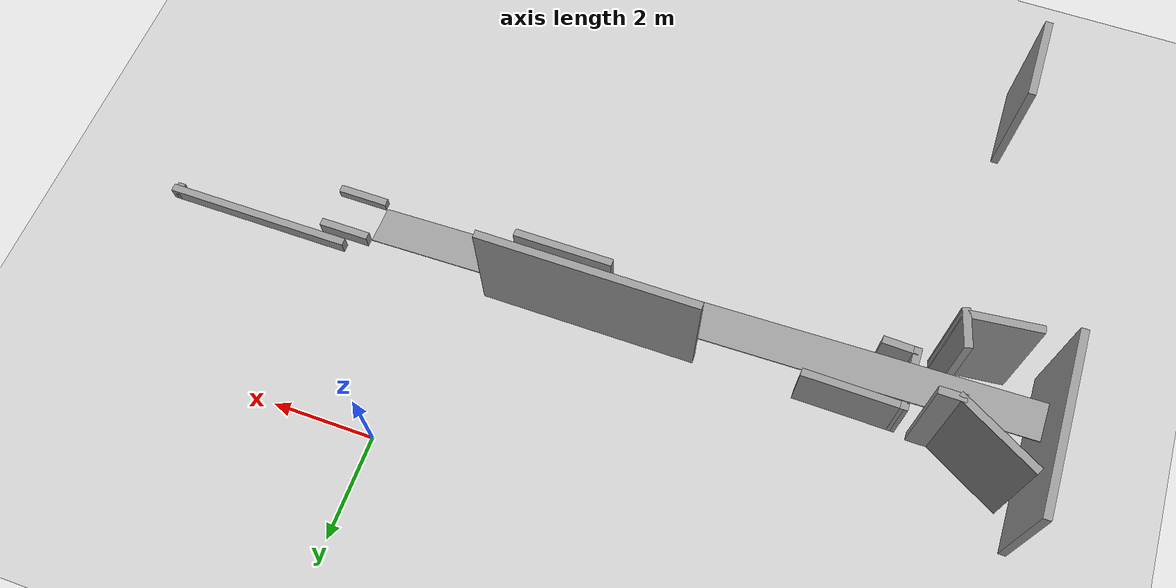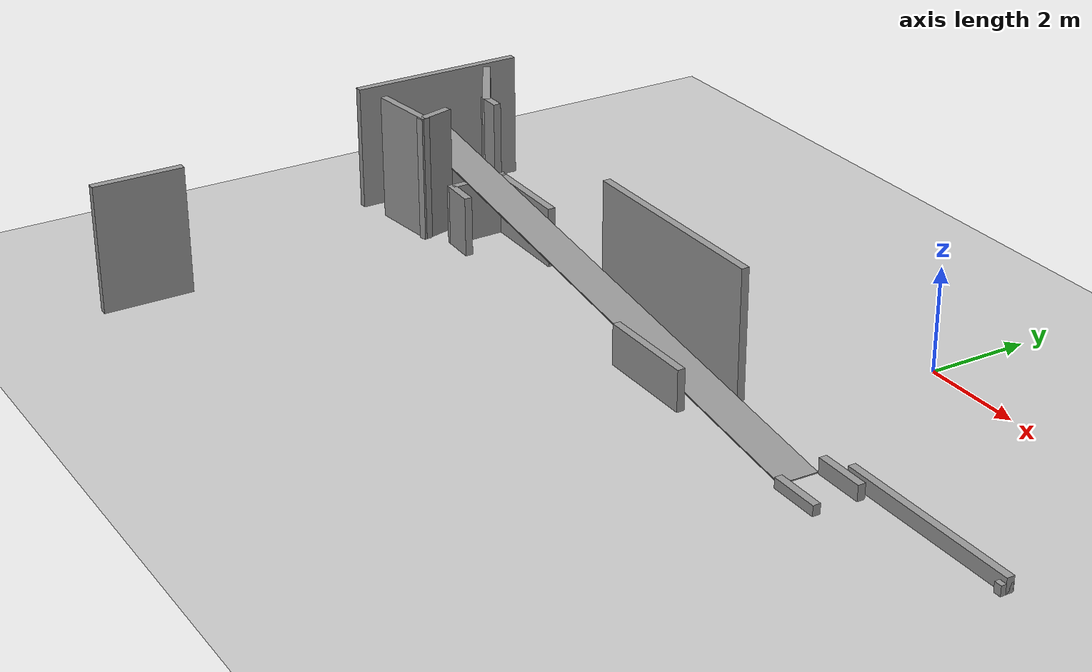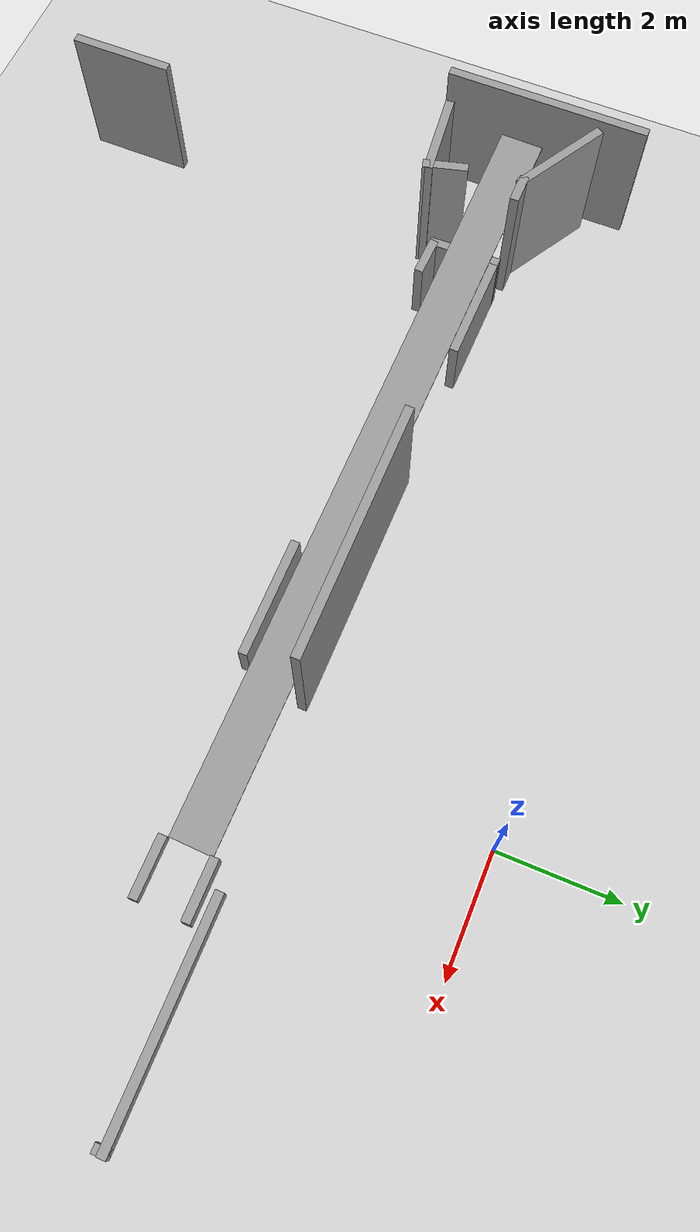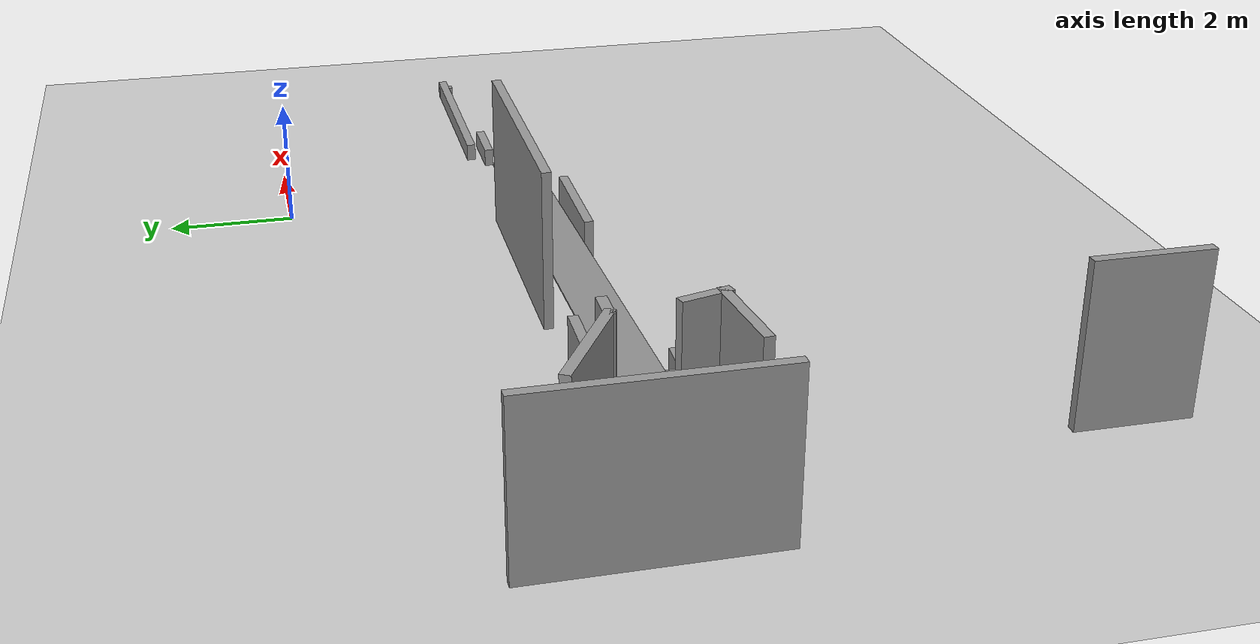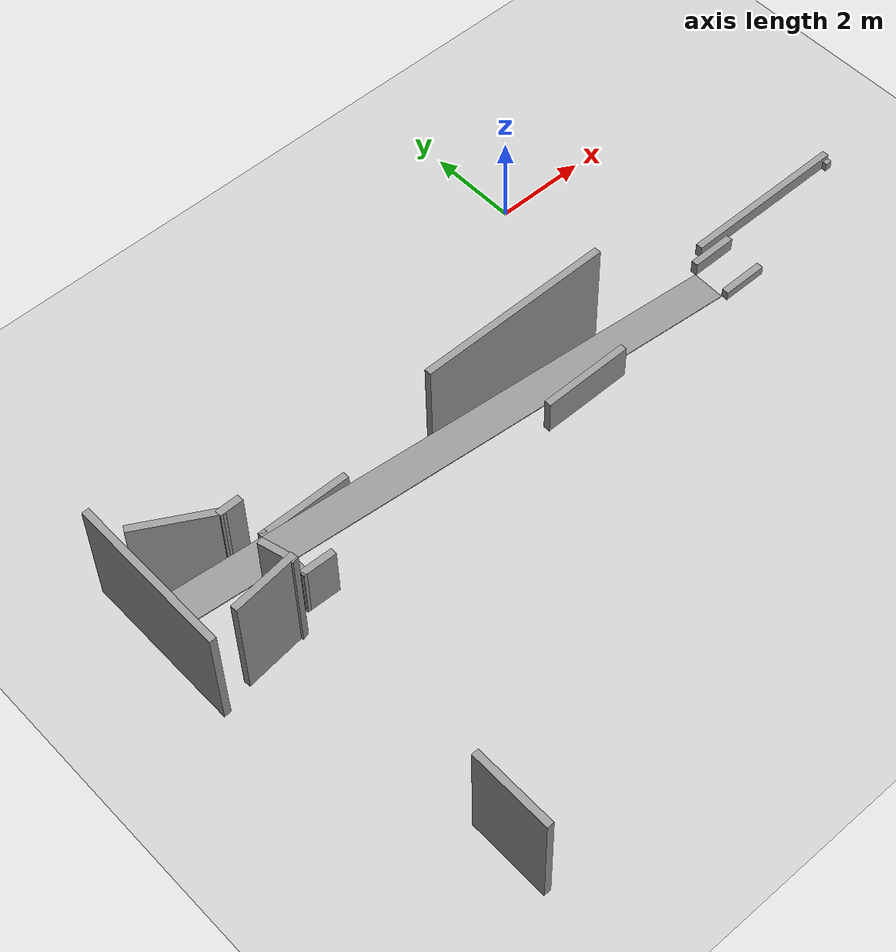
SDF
<sdf version="1.7">
 <world name="default">
  <light name="sun" type="directional">
   <pose>0 0 10 0 -0 0</pose>
   <diffuse>0.8 0.8 0.8 1</diffuse>
   <specular>0.2 0.2 0.2 1</specular>
   <attenuation>
    <range>1000</range>
    <constant>0.9</constant>
    <linear>0.01</linear>
    <quadratic>0.001</quadratic>
   </attenuation>
   <direction>-0.5 0.1 -0.9</direction>
   <spot><inner_angle>0</inner_angle><outer_angle>0</outer_angle><falloff>0</falloff></spot>
  </light>
  <model name="ground_plane">
   <static>1</static>
   <link name="link">
    <collision name="collision">
     <geometry><plane><normal>0 0 1</normal><size>100 100</size></plane></geometry>
     <surface>
      <contact><collide_bitmask>65535</collide_bitmask></contact>
      <friction><ode><mu>100</mu><mu2>50</mu2></ode></friction>
     </surface>
    </collision>
    <visual name="visual">
     <cast_shadows>0</cast_shadows>
     <geometry><plane><normal>0 0 1</normal><size>100 100</size></plane></geometry>
     <material>
      <script><uri>file://media/materials/scripts/gazebo.material</uri><name>Gazebo/Grey</name></script>
     </material>
    </visual>
   </link>
  </model>
  <gravity>0 0 -9.8</gravity>
  <magnetic_field>6e-06 2.3e-05 -4.2e-05</magnetic_field>
  <atmosphere type="adiabatic"/>
  <physics type="ode">
   <max_step_size>0.001</max_step_size>
   <real_time_factor>1</real_time_factor>
   <real_time_update_rate>1000</real_time_update_rate>
  </physics>
  <scene><ambient>0.4 0.4 0.4 1</ambient><background>0.7 0.7 0.7 1</background><shadows>1</shadows></scene>
  <spherical_coordinates>
   <surface_model>EARTH_WGS84</surface_model>
   <latitude_deg>0</latitude_deg>
   <longitude_deg>0</longitude_deg>
   <elevation>0</elevation>
   <heading_deg>0</heading_deg>
  </spherical_coordinates>
  <model name="Untitled">
   <pose>-1.6154 -2.30429 -0.327829 0 -0 0</pose>
   <link name="Wall_3">
    <collision name="Wall_3_Collision">
     <geometry><box><size>1.98023 0.15 1.5</size></box></geometry>
     <pose>0 0 0.75 0 -0 0</pose>
    </collision>
    <visual name="Wall_3_Visual">
     <pose>0 0 0.75 0 -0 0</pose>
     <geometry><box><size>1.98023 0.15 1.5</size></box></geometry>
     <material>
      <script><uri>file://media/materials/scripts/gazebo.material</uri><name>Gazebo/Grey</name></script>
      <ambient>1 1 1 1</ambient>
     </material>
     <meta><layer>0</layer></meta>
    </visual>
    <pose>-6.47232 -1.09923 0 0 -0 3.13066</pose>
   </link>
   <link name="Wall_4">
    <collision name="Wall_4_Collision">
     <geometry><box><size>1.25 0.15 1.5</size></box></geometry>
     <pose>0 0 0.75 0 -0 0</pose>
    </collision>
    <visual name="Wall_4_Visual">
     <pose>0 0 0.75 0 -0 0</pose>
     <geometry><box><size>1.25 0.15 1.5</size></box></geometry>
     <material>
      <script><uri>file://media/materials/scripts/gazebo.material</uri><name>Gazebo/Grey</name></script>
      <ambient>1 1 1 1</ambient>
     </material>
     <meta><layer>0</layer></meta>
    </visual>
    <pose>-7.37732 -1.63923 0 0 -0 -1.55262</pose>
   </link>
   <link name="Wall_5">
    <collision name="Wall_5_Collision">
     <geometry><box><size>0.730466 0.15 1.5</size></box></geometry>
     <pose>0 0 0.75 0 -0 0</pose>
    </collision>
    <visual name="Wall_5_Visual">
     <pose>0 0 0.75 0 -0 0</pose>
     <geometry><box><size>0.730466 0.15 1.5</size></box></geometry>
     <material>
      <script><uri>file://media/materials/scripts/gazebo.material</uri><name>Gazebo/Grey</name></script>
      <ambient>1 1 1 1</ambient>
     </material>
     <meta><layer>0</layer></meta>
    </visual>
    <pose>-7.07733 -2.19923 0 0 -0 -0.034469</pose>
   </link>
   <link name="Wall_8">
    <collision name="Wall_8_Collision">
     <geometry><box><size>3.75 0.15 0.6</size></box></geometry>
     <pose>0 0 0.3 0 -0 0</pose>
    </collision>
    <visual name="Wall_8_Visual">
     <pose>0 0 0.3 0 -0 0</pose>
     <geometry><box><size>3.75 0.15 0.6</size></box></geometry>
     <material>
      <script><uri>file://media/materials/scripts/gazebo.material</uri><name>Gazebo/Grey</name></script>
      <ambient>1 1 1 1</ambient>
     </material>
     <meta><layer>0</layer></meta>
    </visual>
    <pose>5.58868 -1.12923 0 0 -0 0</pose>
   </link>
   <link name="Wall_9">
    <collision name="Wall_9_Collision">
     <geometry><box><size>0.25 0.15 0.5</size></box></geometry>
     <pose>0 0 0.25 0 -0 0</pose>
    </collision>
    <visual name="Wall_9_Visual">
     <pose>0 0 0.25 0 -0 0</pose>
     <geometry><box><size>0.25 0.15 0.5</size></box></geometry>
     <material>
      <script><uri>file://media/materials/scripts/gazebo.material</uri><name>Gazebo/Grey</name></script>
      <ambient>1 1 1 1</ambient>
     </material>
     <meta><layer>0</layer></meta>
    </visual>
    <pose>7.38868 -1.17923 0 0 -0 -1.5708</pose>
   </link>
   <static>1</static>
  </model>
  <model name="Untitled_0">
   <pose>-5.74938 -5.70004 0 0 -0 0</pose>
   <link name="Wall_11">
    <collision name="Wall_11_Collision">
     <geometry><box><size>1.75 0.15 2.5</size></box></geometry>
     <pose>0 0 1.25 0 -0 0</pose>
    </collision>
    <visual name="Wall_11_Visual">
     <pose>0 0 1.25 0 -0 0</pose>
     <geometry><box><size>1.75 0.15 2.5</size></box></geometry>
     <material>
      <script><uri>file://media/materials/scripts/gazebo.material</uri><name>Gazebo/Grey</name></script>
      <ambient>1 1 1 1</ambient>
     </material>
     <meta><layer>0</layer></meta>
    </visual>
    <pose>-3.90331 -4.82504 0 0 -0 1.5708</pose>
   </link>
   <link name="Wall_13">
    <collision name="Wall_13_Collision">
     <geometry><box><size>3.5 0.15 2.5</size></box></geometry>
     <pose>0 0 1.25 0 -0 0</pose>
    </collision>
    <visual name="Wall_13_Visual">
     <pose>0 0 1.25 0 -0 0</pose>
     <geometry><box><size>3.5 0.15 2.5</size></box></geometry>
     <material>
      <script><uri>file://media/materials/scripts/gazebo.material</uri><name>Gazebo/Grey</name></script>
      <ambient>1 1 1 1</ambient>
     </material>
     <meta><layer>0</layer></meta>
    </visual>
    <pose>-5.67438 2.22869 0 0 -0 1.5708</pose>
   </link>
   <link name="Wall_15">
    <collision name="Wall_15_Collision">
     <geometry><box><size>1.43736 0.15 2.5</size></box></geometry>
     <pose>0 0 1.25 0 -0 0</pose>
    </collision>
    <visual name="Wall_15_Visual">
     <pose>0 0 1.25 0 -0 0</pose>
     <geometry><box><size>1.43736 0.15 2.5</size></box></geometry>
     <material>
      <script><uri>file://media/materials/scripts/gazebo.material</uri><name>Gazebo/Grey</name></script>
      <ambient>1 1 1 1</ambient>
     </material>
     <meta><layer>0</layer></meta>
    </visual>
    <pose>-4.33098 0.799944 0 0 -0 0.109524</pose>
   </link>
   <link name="Wall_16">
    <collision name="Wall_16_Collision">
     <geometry><box><size>0.75 0.15 2.5</size></box></geometry>
     <pose>0 0 1.25 0 -0 0</pose>
    </collision>
    <visual name="Wall_16_Visual">
     <pose>0 0 1.25 0 -0 0</pose>
     <geometry><box><size>0.75 0.15 2.5</size></box></geometry>
     <material>
      <script><uri>file://media/materials/scripts/gazebo.material</uri><name>Gazebo/Grey</name></script>
      <ambient>1 1 1 1</ambient>
     </material>
     <meta><layer>0</layer></meta>
    </visual>
    <pose>-3.76881 1.1249 0 0 -0 1.8326</pose>
   </link>
   <link name="Wall_18">
    <collision name="Wall_18_Collision">
     <geometry><box><size>1.75 0.15 2.5</size></box></geometry>
     <pose>0 0 1.25 0 -0 0</pose>
    </collision>
    <visual name="Wall_18_Visual">
     <pose>0 0 1.25 0 -0 0</pose>
     <geometry><box><size>1.75 0.15 2.5</size></box></geometry>
     <material>
      <script><uri>file://media/materials/scripts/gazebo.material</uri><name>Gazebo/Grey</name></script>
      <ambient>1 1 1 1</ambient>
     </material>
     <meta><layer>0</layer></meta>
    </visual>
    <pose>-4.66495 2.7921 0 0 -0 -0.523599</pose>
   </link>
   <link name="Wall_19">
    <collision name="Wall_19_Collision">
     <geometry><box><size>0.5 0.15 2.5</size></box></geometry>
     <pose>0 0 1.25 0 -0 0</pose>
    </collision>
    <visual name="Wall_19_Visual">
     <pose>0 0 1.25 0 -0 0</pose>
     <geometry><box><size>0.5 0.15 2.5</size></box></geometry>
     <material>
      <script><uri>file://media/materials/scripts/gazebo.material</uri><name>Gazebo/Grey</name></script>
      <ambient>1 1 1 1</ambient>
     </material>
     <meta><layer>0</layer></meta>
    </visual>
    <pose>-3.79713 2.3921 0 0 -0 0</pose>
   </link>
   <static>1</static>
  </model>
  <model name="Untitled_1">
   <pose>-2.5657 -2.29393 0 0 -0 0</pose>
   <link name="Wall_22">
    <collision name="Wall_22_Collision">
     <geometry><box><size>4.25 0.15 2.5</size></box></geometry>
     <pose>0 0 1.25 0 -0 0</pose>
    </collision>
    <visual name="Wall_22_Visual">
     <pose>0 0 1.25 0 -0 0</pose>
     <geometry><box><size>4.25 0.15 2.5</size></box></geometry>
     <material>
      <script><uri>file://media/materials/scripts/gazebo.material</uri><name>Gazebo/Grey</name></script>
      <ambient>1 1 1 1</ambient>
     </material>
     <meta><layer>0</layer></meta>
    </visual>
    <pose>-0.440702 -1.16384 0 0 -0 0</pose>
   </link>
   <link name="Wall_24">
    <collision name="Wall_24_Collision">
     <geometry><box><size>2 0.15 0.8</size></box></geometry>
     <pose>0 0 0.4 0 -0 0</pose>
    </collision>
    <visual name="Wall_24_Visual">
     <pose>0 0 0.4 0 -0 0</pose>
     <geometry><box><size>2 0.15 0.8</size></box></geometry>
     <material>
      <script><uri>file://media/materials/scripts/gazebo.material</uri><name>Gazebo/Grey</name></script>
      <ambient>1 1 1 1</ambient>
     </material>
     <meta><layer>0</layer></meta>
    </visual>
    <pose>0.439533 -2.21893 0 0 -0 0</pose>
   </link>
   <static>1</static>
  </model>
  <model name="unit_box">
   <link name="link">
    <inertial>
     <mass>1681.6</mass>
     <inertia><ixx>77.7348</ixx><ixy>0</ixy><ixz>0</ixz><iyy>23994</iyy><iyz>0</iyz><izz>24071.6</izz></inertia>
    </inertial>
    <visual name="visual">
     <geometry><box><size>13.0852 0.744473 0.021934</size></box></geometry>
     <material>
      <script><name>Gazebo/Grey</name><uri>file://media/materials/scripts/gazebo.material</uri></script>
      <shader type="pixel"><normal_map>__default__</normal_map></shader>
     </material>
    </visual>
    <collision name="collision">
     <geometry><box><size>13.0852 0.744473 0.021934</size></box></geometry>
     <surface>
      <friction>
       <ode><mu>1</mu><mu2>1</mu2><fdir1>0 0 0</fdir1><slip1>0</slip1><slip2>0</slip2></ode>
       <torsional>
        <coefficient>1</coefficient>
        <patch_radius>0</patch_radius>
        <surface_radius>0</surface_radius>
        <use_patch_radius>1</use_patch_radius>
        <ode><slip>0</slip></ode>
       </torsional>
      </friction>
      <bounce><restitution_coefficient>0</restitution_coefficient><threshold>1e+06</threshold></bounce>
      <contact>
       <collide_without_contact>0</collide_without_contact>
       <collide_without_contact_bitmask>1</collide_without_contact_bitmask>
       <collide_bitmask>1</collide_bitmask>
       <ode>
        <soft_cfm>0</soft_cfm>
        <soft_erp>0.2</soft_erp>
        <kp>1e+13</kp>
        <kd>1</kd>
        <max_vel>0.01</max_vel>
        <min_depth>0</min_depth>
       </ode>
       <bullet>
        <split_impulse>1</split_impulse>
        <split_impulse_penetration_threshold>-0.01</split_impulse_penetration_threshold>
        <soft_cfm>0</soft_cfm>
        <soft_erp>0.2</soft_erp>
        <kp>1e+13</kp>
        <kd>1</kd>
       </bullet>
      </contact>
     </surface>
    </collision>
   </link>
   <static>0</static>
   <pose>-4.83163 -3.9536 0.742058 2.2e-05 0.111989 -0.028109</pose>
  </model>
  <model name="Untitled_2">
   <pose>1.34724 -2.3176 0 0 -0 0</pose>
   <link name="Wall_29">
    <collision name="Wall_29_Collision">
     <geometry><box><size>1 0.15 0.3</size></box></geometry>
     <pose>0 0 0.15 0 -0 0</pose>
    </collision>
    <visual name="Wall_29_Visual">
     <pose>0 0 0.15 0 -0 0</pose>
     <geometry><box><size>1 0.15 0.3</size></box></geometry>
     <material>
      <script><uri>file://media/materials/scripts/gazebo.material</uri><name>Gazebo/Grey</name></script>
      <ambient>1 1 1 1</ambient>
     </material>
     <meta><layer>0</layer></meta>
    </visual>
    <pose>0.847236 -1.38182 0 0 -0 3.14159</pose>
   </link>
   <link name="Wall_31">
    <collision name="Wall_31_Collision">
     <geometry><box><size>1 0.15 0.2</size></box></geometry>
     <pose>0 0 0.1 0 -0 0</pose>
    </collision>
    <visual name="Wall_31_Visual">
     <pose>0 0 0.1 0 -0 0</pose>
     <geometry><box><size>1 0.15 0.2</size></box></geometry>
     <material>
      <script><uri>file://media/materials/scripts/gazebo.material</uri><name>Gazebo/Grey</name></script>
      <ambient>1 1 1 1</ambient>
     </material>
     <meta><layer>0</layer></meta>
    </visual>
    <pose>0.83618 -2.2426 0 0 -0 0</pose>
   </link>
   <static>1</static>
  </model>
 </world>
</sdf>
